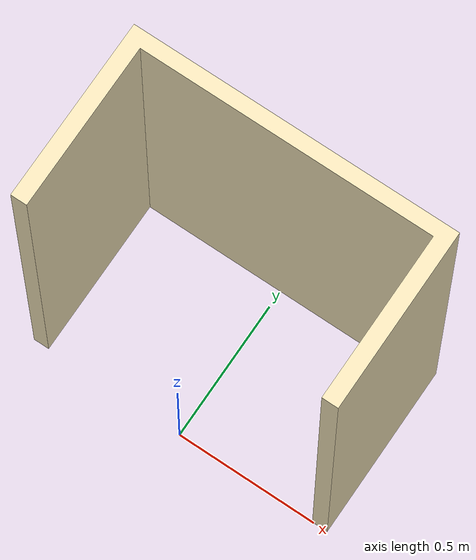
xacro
<?xml version="1.0"?>
<robot name="tunnel3" xmlns:xacro="http://www.ros.org/wiki/xacro">

  <link name="tunnel3_link">
    <visual>
      <geometry>
        <mesh filename="package://qm_description/meshes/tunnel/Tunnel50.stl" scale="0.0011 0.001 0.001"/>
      </geometry>
      <material name="ocher">
          <color rgba="0.949 0.890 0.722 1"/>
      </material>
    </visual>
    <collision>
      <geometry>
        <mesh filename="package://qm_description/meshes/tunnel/Tunnel50.stl" scale="0.0011 0.001 0.001"/>
      </geometry>
    </collision>
    <inertial>
      <mass value="1.0"/>
      <inertia ixx="0.1" ixy="0.0" ixz="0.0" iyy="0.1" iyz="0.0" izz="0.1"/>
    </inertial>
  </link>

  <gazebo reference="tunnel3_link">
    <material>Gazebo/Gray</material>
  </gazebo>

  <!-- Wall fixed to the world-->
  <link name="world"/>

  <joint name="base_link_fixed" type="fixed">
    <parent link="world"/>
    <child link="tunnel3_link"/>
  </joint>

</robot>
